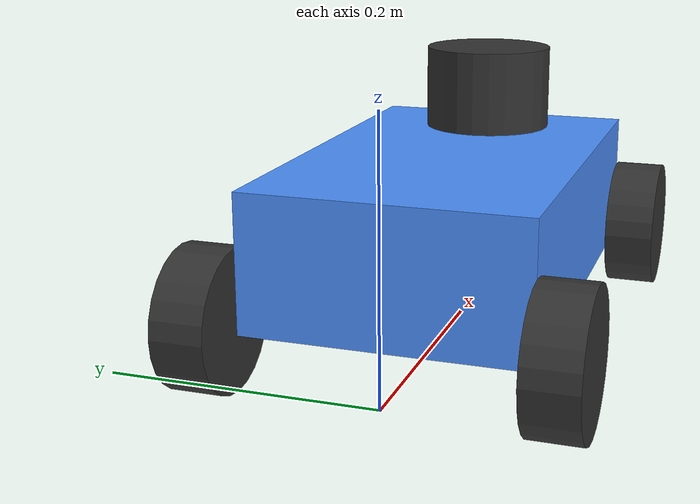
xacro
<?xml version="1.0"?>

<robot name="f1tenth_racecar" xmlns:xacro="http://www.ros.org/wiki/xacro">

  <xacro:include filename="$(find f110_description)/urdf/hokuyo.urdf.xacro"/>

  <material name="black">
    <color rgba="0.2 0.2 0.2 1.0"/>
  </material>

  <material name="blue">
    <color rgba="0.3 0.57 1.0 1.0"/>
  </material>

  <material name="red">
    <color rgba="0.8 0.0 0.0 1.0"/>
  </material>

  <link name="base_link">
    <inertial>
      <origin xyz="0.12 0 0.04" rpy="0 0 0"/>
      <mass value="8.0"/>
      <inertia
        ixx="0.0730" ixy="0.0" ixz="0.0"
        iyy="0.1093" iyz="0.0"
        izz="0.0754"/>
    </inertial>

    <visual>
      <origin xyz="0.165 0 0.09" rpy="0 0 0"/>
      <geometry>
        <box size="0.3302 0.2032 0.1"/>
      </geometry>
      <material name="blue"/>
    </visual>
  </link>

  <xacro:hokuyo_10lx
    parent="base_link"
    name="laser"
    topic="/scan"
    hz="10"
    samples="1080"
    min_angle="-2.35619"
    max_angle="2.35619"
    min_range="0.1"
    max_range="30.0">
    <origin xyz="0.275 0 0.19" rpy="0 0 0"/>
  </xacro:hokuyo_10lx>

  <joint name="base_to_imu" type="fixed">
    <parent link="base_link"/>
    <child link="imu_link"/>
    <origin xyz="0.1 0 0.09" rpy="0 0 0"/>
  </joint>

  <link name="imu_link">
    <inertial>
      <mass value="0.01"/>
      <origin xyz="0 0 0" rpy="0 0 0"/>
      <inertia ixx="1e-6" ixy="0" ixz="0" iyy="1e-6" iyz="0" izz="1e-6"/>
    </inertial>
    <visual>
      <geometry>
        <box size="0.02 0.02 0.02"/>
      </geometry>
    </visual>
    <collision>
      <geometry>
        <box size="0.02 0.02 0.02"/>
      </geometry>
    </collision>
  </link>

  <!-- Gazebo IMU 플러그인 설정 -->
  <gazebo reference="imu_link">
    <gravity>true</gravity>
    <sensor name="imu_sensor" type="imu">
      <always_on>true</always_on>
      <update_rate>100</update_rate>
      <visualize>true</visualize>
      <plugin filename="libgazebo_ros_imu_sensor.so" name="imu_plugin">
        <ros>
          <remapping>~/out:=imu/data_raw</remapping>
          <parameter name="use_sim_time" type="bool">true</parameter>
        </ros>
        <initial_orientation_as_reference>false</initial_orientation_as_reference>
        <frame_name>imu_link</frame_name>
      </plugin>
      <pose>0 0 0 0 0 0</pose>
    </sensor>
  </gazebo>

  <joint name="steering_wheel_joint" type="revolute">
    <parent link="base_link"/>
    <child link="steering_wheel_link"/>
    <origin xyz="0.15 0 0.25" rpy="0 0 0"/>
    <axis xyz="0 0 1"/>
    <limit lower="-6.283" upper="6.283" effort="100.0" velocity="10.0"/>
  </joint>

  <link name="steering_wheel_link">
    <inertial>
      <mass value="0.01"/>
      <origin xyz="0 0 0" rpy="0 0 0"/>
      <inertia
        ixx="1e-5" ixy="0.0" ixz="0.0"
        iyy="1e-5" iyz="0.0"
        izz="1e-5"/>
    </inertial>
  </link>

  <joint name="left_rear_wheel_joint" type="continuous">
    <parent link="base_link"/>
    <child link="left_rear_wheel"/>
    <origin xyz="0 0.12065 0.0508" rpy="0 0 0"/>
    <axis xyz="0 1 0"/>
    <dynamics damping="0.1" friction="0.05"/>
  </joint>

  <link name="left_rear_wheel">
    <inertial>
      <mass value="0.34055"/>
      <origin xyz="0 0 0" rpy="0 0 0"/>
      <inertia
        ixx="0.00026046" ixy="0.0" ixz="0.0"
        iyy="0.00026046" iyz="0.0"
        izz="0.00044"/>
    </inertial>

    <visual>
      <geometry>
        <cylinder radius="0.0508" length="0.0381"/>
      </geometry>
      <material name="black"/>
      <origin xyz="0 0 0" rpy="1.5707963 0 0"/>
    </visual>

    <collision>
      <geometry>
        <cylinder radius="0.0508" length="0.0381"/>
      </geometry>
      <origin xyz="0 0 0" rpy="1.5707963 0 0"/>
      <contact>
        <lateral_friction value="1.0"/>
      </contact>
    </collision>
  </link>

  <joint name="right_rear_wheel_joint" type="continuous">
    <parent link="base_link"/>
    <child link="right_rear_wheel"/>
    <origin xyz="0 -0.12065 0.0508" rpy="0 0 0"/>
    <axis xyz="0 1 0"/>
    <dynamics damping="0.1" friction="0.05"/>
  </joint>

  <link name="right_rear_wheel">
    <inertial>
      <mass value="0.34055"/>
      <origin xyz="0 0 0" rpy="0 0 0"/>
      <inertia
        ixx="0.00026046" ixy="0.0" ixz="0.0"
        iyy="0.00026046" iyz="0.0"
        izz="0.00044"/>
    </inertial>

    <visual>
      <geometry>
        <cylinder radius="0.0508" length="0.0381"/>
      </geometry>
      <material name="black"/>
      <origin xyz="0 0 0" rpy="1.5707963 0 0"/>
    </visual>

    <collision>
      <geometry>
        <cylinder radius="0.0508" length="0.0381"/>
      </geometry>
      <origin xyz="0 0 0" rpy="1.5707963 0 0"/>
      <contact>
        <lateral_friction value="1.0"/>
      </contact>
    </collision>
  </link>

  <joint name="left_steering_hinge_joint" type="revolute">
    <parent link="base_link"/>
    <child link="left_steering_hinge"/>
    <origin xyz="0.3302 0.12065 0.0508" rpy="0 0 0"/>
    <axis xyz="0 0 1"/>
    <limit lower="-0.4189" upper="0.4189" effort="10.0" velocity="3.2"/>
    <dynamics damping="0.7" friction="1.0"/>
  </joint>

  <link name="left_steering_hinge">
    <inertial>
      <mass value="0.1"/>
      <origin xyz="0 0 0" rpy="0 0 0"/>
      <inertia
        ixx="0.0001" ixy="0.0" ixz="0.0"
        iyy="0.0001" iyz="0.0"
        izz="0.0001"/>
    </inertial>
  </link>

  <joint name="left_front_wheel_joint" type="continuous">
    <parent link="left_steering_hinge"/>
    <child link="left_front_wheel"/>
    <origin xyz="0 0 0" rpy="0 0 0"/>
    <axis xyz="0 1 0"/>
    <dynamics damping="0.05" friction="0.01"/>
  </joint>

  <link name="left_front_wheel">
    <inertial>
      <mass value="0.34055"/>
      <origin xyz="0 0 0" rpy="0 0 0"/>
      <inertia
        ixx="0.00026046" ixy="0.0" ixz="0.0"
        iyy="0.00026046" iyz="0.0"
        izz="0.00044"/>
    </inertial>

    <visual>
      <geometry>
        <cylinder radius="0.0508" length="0.0381"/>
      </geometry>
      <material name="black"/>
      <origin xyz="0 0 0" rpy="1.5707963 0 0"/>
    </visual>

    <collision>
      <geometry>
        <cylinder radius="0.0508" length="0.0381"/>
      </geometry>
      <origin xyz="0 0 0" rpy="1.5707963 0 0"/>
      <contact>
        <lateral_friction value="1.0"/>
      </contact>
    </collision>
  </link>

  <joint name="right_steering_hinge_joint" type="revolute">
    <parent link="base_link"/>
    <child link="right_steering_hinge"/>
    <origin xyz="0.3302 -0.12065 0.0508" rpy="0 0 0"/>
    <axis xyz="0 0 1"/>
    <limit lower="-0.4189" upper="0.4189" effort="10.0" velocity="3.2"/>
    <dynamics damping="0.7" friction="1.0"/>
  </joint>

  <link name="right_steering_hinge">
    <inertial>
      <mass value="0.1"/>
      <origin xyz="0 0 0" rpy="0 0 0"/>
      <inertia
        ixx="0.0001" ixy="0.0" ixz="0.0"
        iyy="0.0001" iyz="0.0"
        izz="0.0001"/>
    </inertial>
  </link>

  <joint name="right_front_wheel_joint" type="continuous">
    <parent link="right_steering_hinge"/>
    <child link="right_front_wheel"/>
    <origin xyz="0 0 0" rpy="0 0 0"/>
    <axis xyz="0 1 0"/>
    <dynamics damping="0.05" friction="0.01"/>
  </joint>

  <link name="right_front_wheel">
    <inertial>
      <mass value="0.34055"/>
      <origin xyz="0 0 0" rpy="0 0 0"/>
      <inertia
        ixx="0.00026046" ixy="0.0" ixz="0.0"
        iyy="0.00026046" iyz="0.0"
        izz="0.00044"/>
    </inertial>

    <visual>
      <geometry>
        <cylinder radius="0.0508" length="0.0381"/>
      </geometry>
      <material name="black"/>
      <origin xyz="0 0 0" rpy="1.5707963 0 0"/>
    </visual>

    <collision>
      <geometry>
        <cylinder radius="0.0508" length="0.0381"/>
      </geometry>
      <origin xyz="0 0 0" rpy="1.5707963 0 0"/>
      <contact>
        <lateral_friction value="1.0"/>
      </contact>
    </collision>
  </link>

  <gazebo reference="base_link">
    <mu1>0.1</mu1>
    <mu2>0.1</mu2>
    <kp>1000000.0</kp>
    <kd>100.0</kd>
    <material>Gazebo/Blue</material>
    <self_collide>false</self_collide>
  </gazebo>

  <gazebo reference="left_rear_wheel">
    <mu1>1.5</mu1>
    <mu2>0.5</mu2>
    <slip1>0.0</slip1>
    <slip2>0.05</slip2>
    <kp>1000000.0</kp>
    <kd>100.0</kd>
    <fdir1>1 0 0</fdir1>
    <minDepth>0.003</minDepth>
    <maxVel>10.0</maxVel>
    <self_collide>false</self_collide>
  </gazebo>

  <gazebo reference="right_rear_wheel">
    <mu1>1.5</mu1>
    <mu2>0.5</mu2>
    <slip1>0.0</slip1>
    <slip2>0.05</slip2>
    <kp>1000000.0</kp>
    <kd>100.0</kd>
    <fdir1>1 0 0</fdir1>
    <minDepth>0.003</minDepth>
    <maxVel>10.0</maxVel>
    <self_collide>false</self_collide>
  </gazebo>

  <gazebo reference="left_front_wheel">
    <mu1>0.2</mu1>
    <mu2>10.0</mu2>
    <slip1>0.0</slip1>
    <slip2>0.0</slip2>
    <kp>10000000.0</kp>
    <kd>100.0</kd>
    <fdir1>1 0 0</fdir1>
    <minDepth>0.005</minDepth>
    <maxVel>10.0</maxVel>
    <self_collide>false</self_collide>
  </gazebo>

  <gazebo reference="right_front_wheel">
    <mu1>0.2</mu1>
    <mu2>10.0</mu2>
    <slip1>0.0</slip1>
    <slip2>0.0</slip2>
    <kp>10000000.0</kp>
    <kd>100.0</kd>
    <fdir1>1 0 0</fdir1>
    <minDepth>0.005</minDepth>
    <maxVel>10.0</maxVel>
    <self_collide>false</self_collide>
  </gazebo>

  <ros2_control name="f1tenth_system" type="system">
    <hardware>
      <plugin>gazebo_ros2_control/GazeboSystem</plugin>
    </hardware>

    <joint name="left_rear_wheel_joint">
      <command_interface name="velocity">
        <param name="min">-100.0</param>
        <param name="max">100.0</param>
      </command_interface>
      <state_interface name="position"/>
      <state_interface name="velocity"/>
    </joint>

    <joint name="right_rear_wheel_joint">
      <command_interface name="velocity">
        <param name="min">-100.0</param>
        <param name="max">100.0</param>
      </command_interface>
      <state_interface name="position"/>
      <state_interface name="velocity"/>
    </joint>

    <joint name="left_steering_hinge_joint">
      <command_interface name="position">
        <param name="min">-0.7</param>
        <param name="max">0.7</param>
      </command_interface>
      <state_interface name="position"/>
      <state_interface name="velocity"/>
    </joint>

    <joint name="right_steering_hinge_joint">
      <command_interface name="position">
        <param name="min">-0.7</param>
        <param name="max">0.7</param>
      </command_interface>
      <state_interface name="position"/>
      <state_interface name="velocity"/>
    </joint>
  </ros2_control>

  <gazebo>
    <plugin name="gazebo_ros2_control" filename="libgazebo_ros2_control.so">
        <robot_param>robot_description</robot_param>
        <robot_param_node>robot_state_publisher</robot_param_node>
        <parameters>$(find f110_description)/config/ros2_control.yaml</parameters>
        <ros>
          <parameter name="use_sim_time" type="bool">true</parameter>
        </ros>
    </plugin>
  </gazebo>

  <transmission name="left_rear_wheel_transmission">
    <type>transmission_interface/SimpleTransmission</type>
    <joint name="left_rear_wheel_joint">
      <hardwareInterface>velocity</hardwareInterface>
    </joint>
    <actuator name="left_rear_wheel_actuator">
      <hardwareInterface>velocity</hardwareInterface>
      <mechanicalReduction>1</mechanicalReduction>
    </actuator>
  </transmission>

  <transmission name="right_rear_wheel_transmission">
    <type>transmission_interface/SimpleTransmission</type>
    <joint name="right_rear_wheel_joint">
      <hardwareInterface>velocity</hardwareInterface>
    </joint>
    <actuator name="right_rear_wheel_actuator">
      <hardwareInterface>velocity</hardwareInterface>
      <mechanicalReduction>1</mechanicalReduction>
    </actuator>
  </transmission>

  <transmission name="left_steering_hinge_transmission">
    <type>transmission_interface/SimpleTransmission</type>
    <joint name="left_steering_hinge_joint">
      <hardwareInterface>position</hardwareInterface>
    </joint>
    <actuator name="left_steering_hinge_actuator">
      <hardwareInterface>position</hardwareInterface>
      <mechanicalReduction>1</mechanicalReduction>
    </actuator>
  </transmission>

  <transmission name="right_steering_hinge_transmission">
    <type>transmission_interface/SimpleTransmission</type>
    <joint name="right_steering_hinge_joint">
      <hardwareInterface>position</hardwareInterface>
    </joint>
    <actuator name="right_steering_hinge_actuator">
      <hardwareInterface>position</hardwareInterface>
      <mechanicalReduction>1</mechanicalReduction>
    </actuator>
  </transmission>

</robot>

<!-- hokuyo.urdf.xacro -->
<robot xmlns:xacro="http://www.ros.org/wiki/xacro">

  <xacro:macro name="hokuyo_10lx" params="parent name topic hz samples min_angle max_angle min_range max_range *origin">

    <!-- Hokuyo LiDAR Joint -->
    <joint name="${parent}_to_${name}" type="fixed">
      <xacro:insert_block name="origin"/>
      <parent link="${parent}"/>
      <child link="${name}_link"/>
    </joint>

    <!-- Hokuyo LiDAR Link -->
    <link name="${name}_link">
      <inertial>
        <mass value="0.130"/>  <!-- Hokuyo 10LX actual mass -->
        <origin xyz="0 0 0" rpy="0 0 0"/>
        <inertia
          ixx="0.0001" ixy="0.0" ixz="0.0"
          iyy="0.0001" iyz="0.0"
          izz="0.0001"/>
      </inertial>

      <visual>
        <origin xyz="0 0 -0.02" rpy="0 0 0"/>
        <geometry>
          <cylinder radius="0.05" length="0.07"/>
        </geometry>
        <material name="hokuyo_black">
          <color rgba="0.2 0.2 0.2 1.0"/>
        </material>
      </visual>

      <collision>
        <origin xyz="0 0 -0.02" rpy="0 0 0"/>
        <geometry>
          <cylinder radius="0.05" length="0.07"/>
        </geometry>
      </collision>
    </link>

    <!-- Gazebo LiDAR Sensor -->
    <gazebo reference="${name}_link">
      <sensor type="ray" name="${name}_sensor">
        <pose>0 0 0 0 0 0</pose>
        <visualize>true</visualize>
        <update_rate>${hz}</update_rate>
        <ray>
          <scan>
            <horizontal>
              <samples>${samples}</samples>
              <resolution>1</resolution>
              <min_angle>${min_angle}</min_angle>
              <max_angle>${max_angle}</max_angle>
            </horizontal>
          </scan>
          <range>
            <min>${min_range}</min>
            <max>${max_range}</max>
            <resolution>0.01</resolution>
          </range>
          <noise>
            <type>gaussian</type>
            <mean>0.0</mean>
            <stddev>0.01</stddev>
          </noise>
        </ray>
        <plugin name="gazebo_ros_${name}_controller" filename="libgazebo_ros_ray_sensor.so">
          <ros>
            <remapping>~/out:=${topic}</remapping>
            <parameter name="use_sim_time" type="bool">true</parameter>
          </ros>
          <output_type>sensor_msgs/LaserScan</output_type>
          <frame_name>${name}_link</frame_name>
        </plugin>
      </sensor>
      <material>Gazebo/FlatBlack</material>
    </gazebo>

  </xacro:macro>

</robot>
